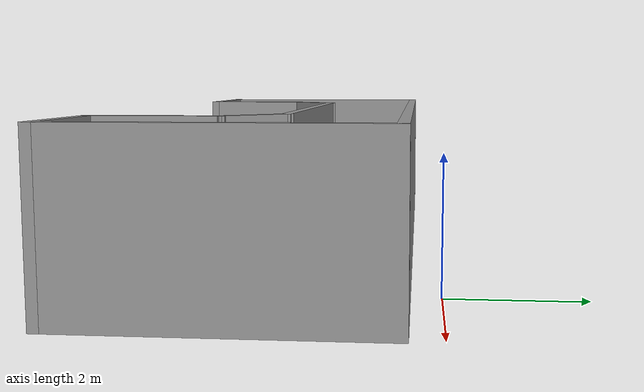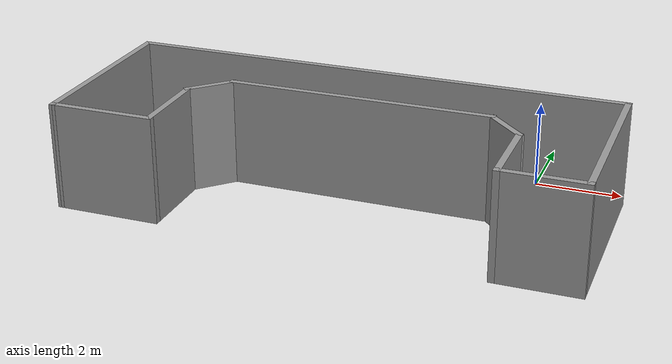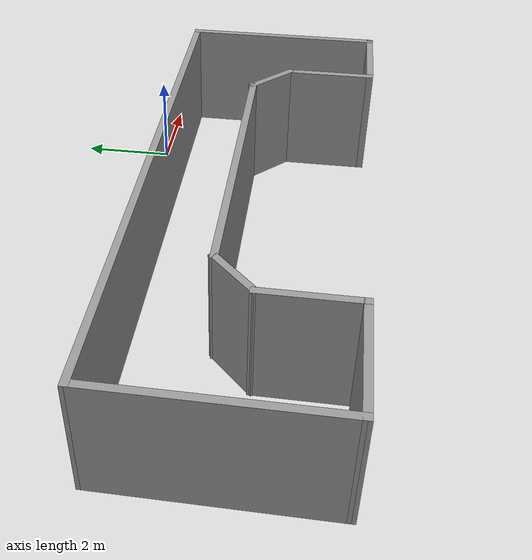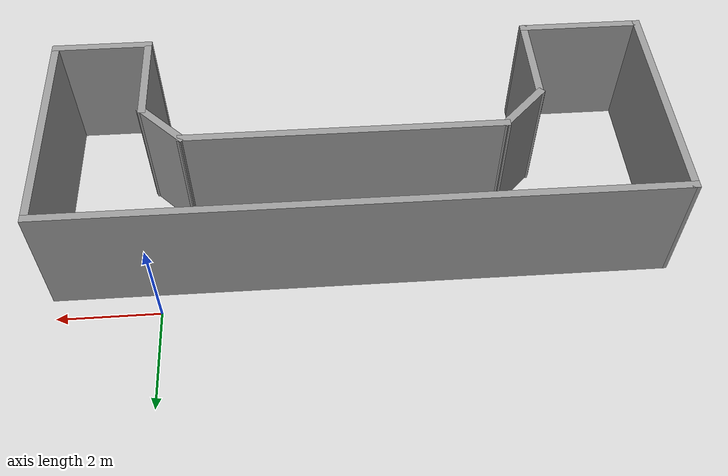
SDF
<?xml version='1.0'?>
<sdf version='1.6'>
  <model name='MyWorld'>
    <pose frame=''>-3.89737 -2.6805 0 0 -0 0</pose>
    <link name='Wall_1'>
      <collision name='Wall_1_Collision'>
        <geometry>
          <box>
            <size>12 0.15 2.5</size>
          </box>
        </geometry>
        <pose frame=''>0 0 1.25 0 -0 0</pose>
      </collision>
      <visual name='Wall_1_Visual'>
        <pose frame=''>0 0 1.25 0 -0 0</pose>
        <geometry>
          <box>
            <size>12 0.15 2.5</size>
          </box>
        </geometry>
        <material>
          <script>
            <uri>file://media/materials/scripts/gazebo.material</uri>
            <name>Gazebo/Grey</name>
          </script>
          <ambient>1 1 1 1</ambient>
        </material>
        <meta>
          <layer>0</layer>
        </meta>
      </visual>
      <pose frame=''>0.002866 2.175 0 0 -0 0</pose>
    </link>
    <link name='Wall_10'>
      <collision name='Wall_10_Collision'>
        <geometry>
          <box>
            <size>4.5 0.15 2.5</size>
          </box>
        </geometry>
        <pose frame=''>0 0 1.25 0 -0 0</pose>
      </collision>
      <visual name='Wall_10_Visual'>
        <pose frame=''>0 0 1.25 0 -0 0</pose>
        <geometry>
          <box>
            <size>4.5 0.15 2.5</size>
          </box>
        </geometry>
        <material>
          <script>
            <uri>file://media/materials/scripts/gazebo.material</uri>
            <name>Gazebo/Grey</name>
          </script>
          <ambient>1 1 1 1</ambient>
        </material>
        <meta>
          <layer>0</layer>
        </meta>
      </visual>
      <pose frame=''>-5.92495 0 0 0 -0 1.5695</pose>
    </link>
    <link name='Wall_2'>
      <collision name='Wall_2_Collision'>
        <geometry>
          <box>
            <size>4.5 0.15 2.5</size>
          </box>
        </geometry>
        <pose frame=''>0 0 1.25 0 -0 0</pose>
      </collision>
      <visual name='Wall_2_Visual'>
        <pose frame=''>0 0 1.25 0 -0 0</pose>
        <geometry>
          <box>
            <size>4.5 0.15 2.5</size>
          </box>
        </geometry>
        <material>
          <script>
            <uri>file://media/materials/scripts/gazebo.material</uri>
            <name>Gazebo/Grey</name>
          </script>
          <ambient>1 1 1 1</ambient>
        </material>
        <meta>
          <layer>0</layer>
        </meta>
      </visual>
      <pose frame=''>5.92787 0 0 0 0 -1.5708</pose>
    </link>
    <link name='Wall_3'>
      <collision name='Wall_3_Collision'>
        <geometry>
          <box>
            <size>2 0.15 2.5</size>
          </box>
        </geometry>
        <pose frame=''>0 0 1.25 0 -0 0</pose>
      </collision>
      <visual name='Wall_3_Visual'>
        <pose frame=''>0 0 1.25 0 -0 0</pose>
        <geometry>
          <box>
            <size>2 0.15 2.5</size>
          </box>
        </geometry>
        <material>
          <script>
            <uri>file://media/materials/scripts/gazebo.material</uri>
            <name>Gazebo/Grey</name>
          </script>
          <ambient>1 1 1 1</ambient>
        </material>
        <meta>
          <layer>0</layer>
        </meta>
      </visual>
      <pose frame=''>5.00287 -2.175 0 0 -0 3.14159</pose>
    </link>
    <link name='Wall_4'>
      <collision name='Wall_4_Collision'>
        <geometry>
          <box>
            <size>2 0.15 2.5</size>
          </box>
        </geometry>
        <pose frame=''>0 0 1.25 0 -0 0</pose>
      </collision>
      <visual name='Wall_4_Visual'>
        <pose frame=''>0 0 1.25 0 -0 0</pose>
        <geometry>
          <box>
            <size>2 0.15 2.5</size>
          </box>
        </geometry>
        <material>
          <script>
            <uri>file://media/materials/scripts/gazebo.material</uri>
            <name>Gazebo/Grey</name>
          </script>
          <ambient>1 1 1 1</ambient>
        </material>
        <meta>
          <layer>0</layer>
        </meta>
      </visual>
      <pose frame=''>4.07787 -1.25 0 0 -0 1.5708</pose>
    </link>
    <link name='Wall_5'>
      <collision name='Wall_5_Collision'>
        <geometry>
          <box>
            <size>1.25 0.15 2.5</size>
          </box>
        </geometry>
        <pose frame=''>0 0 1.25 0 -0 0</pose>
      </collision>
      <visual name='Wall_5_Visual'>
        <pose frame=''>0 0 1.25 0 -0 0</pose>
        <geometry>
          <box>
            <size>1.25 0.15 2.5</size>
          </box>
        </geometry>
        <material>
          <script>
            <uri>file://media/materials/scripts/gazebo.material</uri>
            <name>Gazebo/Grey</name>
          </script>
          <ambient>1 1 1 1</ambient>
        </material>
        <meta>
          <layer>0</layer>
        </meta>
      </visual>
      <pose frame=''>3.68896 0.063909 0 0 -0 2.35619</pose>
    </link>
    <link name='Wall_6'>
      <collision name='Wall_6_Collision'>
        <geometry>
          <box>
            <size>6.25 0.15 2.5</size>
          </box>
        </geometry>
        <pose frame=''>0 0 1.25 0 -0 0</pose>
      </collision>
      <visual name='Wall_6_Visual'>
        <pose frame=''>0 0 1.25 0 -0 0</pose>
        <geometry>
          <box>
            <size>6.25 0.15 2.5</size>
          </box>
        </geometry>
        <material>
          <script>
            <uri>file://media/materials/scripts/gazebo.material</uri>
            <name>Gazebo/Grey</name>
          </script>
          <ambient>1 1 1 1</ambient>
        </material>
        <meta>
          <layer>0</layer>
        </meta>
      </visual>
      <pose frame=''>0.250048 0.452818 0 0 -0 3.14159</pose>
    </link>
    <link name='Wall_7'>
      <collision name='Wall_7_Collision'>
        <geometry>
          <box>
            <size>1.25 0.15 2.5</size>
          </box>
        </geometry>
        <pose frame=''>0 0 1.25 0 -0 0</pose>
      </collision>
      <visual name='Wall_7_Visual'>
        <pose frame=''>0 0 1.25 0 -0 0</pose>
        <geometry>
          <box>
            <size>1.25 0.15 2.5</size>
          </box>
        </geometry>
        <material>
          <script>
            <uri>file://media/materials/scripts/gazebo.material</uri>
            <name>Gazebo/Grey</name>
          </script>
          <ambient>1 1 1 1</ambient>
        </material>
        <meta>
          <layer>0</layer>
        </meta>
      </visual>
      <pose frame=''>-3.18886 0.063909 0 0 0 -2.35619</pose>
    </link>
    <link name='Wall_8'>
      <collision name='Wall_8_Collision'>
        <geometry>
          <box>
            <size>2 0.15 2.5</size>
          </box>
        </geometry>
        <pose frame=''>0 0 1.25 0 -0 0</pose>
      </collision>
      <visual name='Wall_8_Visual'>
        <pose frame=''>0 0 1.25 0 -0 0</pose>
        <geometry>
          <box>
            <size>2 0.15 2.5</size>
          </box>
        </geometry>
        <material>
          <script>
            <uri>file://media/materials/scripts/gazebo.material</uri>
            <name>Gazebo/Grey</name>
          </script>
          <ambient>1 1 1 1</ambient>
        </material>
        <meta>
          <layer>0</layer>
        </meta>
      </visual>
      <pose frame=''>-3.57777 -1.25 0 0 0 -1.5708</pose>
    </link>
    <link name='Wall_9'>
      <collision name='Wall_9_Collision'>
        <geometry>
          <box>
            <size>2.5 0.15 2.5</size>
          </box>
        </geometry>
        <pose frame=''>0 0 1.25 0 -0 0</pose>
      </collision>
      <visual name='Wall_9_Visual'>
        <pose frame=''>0 0 1.25 0 -0 0</pose>
        <geometry>
          <box>
            <size>2.5 0.15 2.5</size>
          </box>
        </geometry>
        <material>
          <script>
            <uri>file://media/materials/scripts/gazebo.material</uri>
            <name>Gazebo/Grey</name>
          </script>
          <ambient>1 1 1 1</ambient>
        </material>
        <meta>
          <layer>0</layer>
        </meta>
      </visual>
      <pose frame=''>-4.75277 -2.175 0 0 -0 3.14159</pose>
    </link>
    <static>1</static>
  </model>
</sdf>
